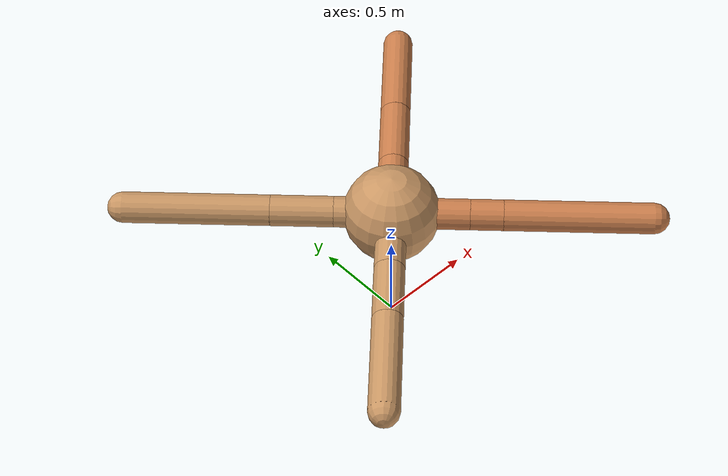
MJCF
<mujoco model="ant">
  <compiler angle="degree" coordinate="local" inertiafromgeom="true" />
  <option integrator="RK4" timestep="0.01" />
  <custom>
    <numeric data="0.0 0.0 0.55 1.0 0.0 0.0 0.0 0.0 1.0 0.0 -1.0 0.0 -1.0 0.0 1.0" name="init_qpos" />
  </custom>
  <default>
    <joint armature="1" damping="1" limited="true" />
    <geom conaffinity="0" condim="3" density="5.0" friction="1.5 0.1 0.1" margin="0.01" rgba="0.8 0.6 0.4 1" />
  </default>
  <worldbody>
    <body name="torso" pos="0 0 0.75">
      <geom name="torso_geom" pos="0 0 0" size="0.25" type="sphere" />

      <body name="front_left_leg" pos="0 0 0">
        <geom fromto="0.0 0.0 0.0 0.24369936886210591 0.24369936886210591 0.0" name="aux_1_geom" size="0.08" type="capsule" rgba=".8 .5 .3 1" />
        <body name="aux_1" pos="0.24369936886210591 0.24369936886210591 0.0">
          <joint axis="0 0 1" name="hip_1" pos="0.0 0.0 0.0" range="-40 40" type="hinge" />
          <geom fromto="0.0 0.0 0.0 0.27220709051150344 0.27220709051150344 0.0" name="left_leg_geom" size="0.08" type="capsule" rgba=".8 .5 .3 1" />
          <body pos="0.27220709051150344 0.27220709051150344 0.0" name="front_left_foot">
            <joint axis="-1 1 0" name="ankle_1" pos="0.0 0.0 0.0" range="30 100" type="hinge" />
            <geom fromto="0.0 0.0 0.0 0.3776416503531829 0.3776416503531829 0.0" name="left_ankle_geom" size="0.08" type="capsule" rgba=".8 .5 .3 1" />
          </body>
        </body>
      </body>
      <body name="front_right_leg" pos="0 0 0">
        <geom fromto="0.0 0.0 0.0 -0.2091077825856037 0.2091077825856037 0.0" name="aux_2_geom" size="0.08" type="capsule" />
        <body name="aux_2" pos="-0.2091077825856037 0.2091077825856037 0.0">
          <joint axis="0 0 1" name="hip_2" pos="0.0 0.0 0.0" range="-40 40" type="hinge" />
          <geom fromto="0.0 0.0 0.0 -0.23034147837023902 0.23034147837023902 0.0" name="right_leg_geom" size="0.08" type="capsule" />
          <body pos="-0.23034147837023902 0.23034147837023902 0.0" name="front_right_foot">
            <joint axis="1 1 0" name="ankle_2" pos="0.0 0.0 0.0" range="-100 -30" type="hinge" />
            <geom fromto="0.0 0.0 0.0 -0.535016066501719 0.535016066501719 0.0" name="right_ankle_geom" size="0.08" type="capsule" />
          </body>
        </body>
      </body>
      <body name="left_back_leg" pos="0 0 0">
        <geom fromto="0.0 0.0 0.0 -0.27150885611860437 -0.27150885611860437 0.0" name="aux_3_geom" size="0.08" type="capsule" />
        <body name="aux_3" pos="-0.27150885611860437 -0.27150885611860437 0.0">
          <joint axis="0 0 1" name="hip_3" pos="0.0 0.0 0.0" range="-40 40" type="hinge" />
          <geom fromto="0.0 0.0 0.0 -0.22935034251147546 -0.22935034251147546 0.0" name="back_leg_geom" size="0.08" type="capsule" />
          <body pos="-0.22935034251147546 -0.22935034251147546 0.0" name="left_back_foot">
            <joint axis="-1 1 0" name="ankle_3" pos="0.0 0.0 0.0" range="-100 -30" type="hinge" />
            <geom fromto="0.0 0.0 0.0 -0.3984099682143294 -0.3984099682143294 0.0" name="third_ankle_geom" size="0.08" type="capsule" />
          </body>
        </body>
      </body>
      <body name="right_back_leg" pos="0 0 0">
        <geom fromto="0.0 0.0 0.0 0.28335462387252586 -0.28335462387252586 0.0" name="aux_4_geom" size="0.08" type="capsule" rgba=".8 .5 .3 1" />
        <body name="aux_4" pos="0.28335462387252586 -0.28335462387252586 0.0">
          <joint axis="0 0 1" name="hip_4" pos="0.0 0.0 0.0" range="-40 40" type="hinge" />
          <geom fromto="0.0 0.0 0.0 0.12050833518507716 -0.12050833518507716 0.0" name="rightback_leg_geom" size="0.08" type="capsule" rgba=".8 .5 .3 1" />
          <body pos="0.12050833518507716 -0.12050833518507716 0.0" name="right_back_foot">
            <joint axis="1 1 0" name="ankle_4" pos="0.0 0.0 0.0" range="30 100" type="hinge" />
            <geom fromto="0.0 0.0 0.0 0.5440338695768734 -0.5440338695768734 0.0" name="fourth_ankle_geom" size="0.08" type="capsule" rgba=".8 .5 .3 1" />
          </body>
        </body>
      </body>
    </body>
  </worldbody>
  <actuator>
    <motor ctrllimited="true" ctrlrange="-1.0 1.0" joint="hip_4" gear="150" />
    <motor ctrllimited="true" ctrlrange="-1.0 1.0" joint="ankle_4" gear="150" />
    <motor ctrllimited="true" ctrlrange="-1.0 1.0" joint="hip_1" gear="150" />
    <motor ctrllimited="true" ctrlrange="-1.0 1.0" joint="ankle_1" gear="150" />
    <motor ctrllimited="true" ctrlrange="-1.0 1.0" joint="hip_2" gear="150" />
    <motor ctrllimited="true" ctrlrange="-1.0 1.0" joint="ankle_2" gear="150" />
    <motor ctrllimited="true" ctrlrange="-1.0 1.0" joint="hip_3" gear="150" />
    <motor ctrllimited="true" ctrlrange="-1.0 1.0" joint="ankle_3" gear="150" />
  </actuator>
</mujoco>
